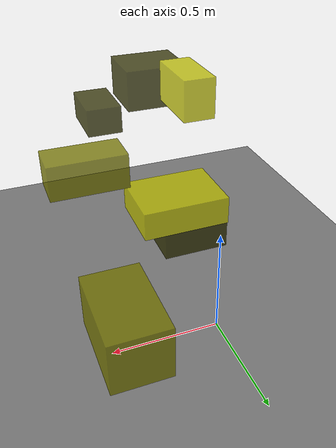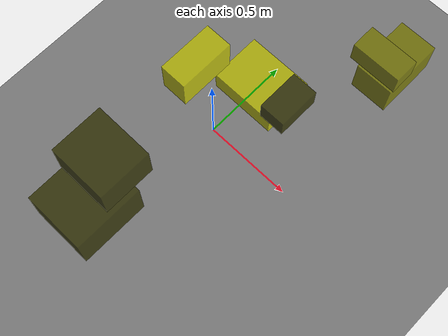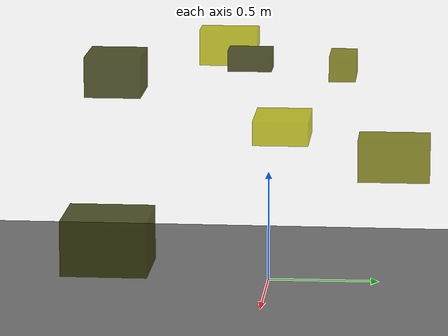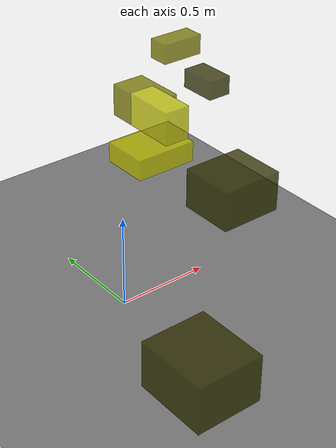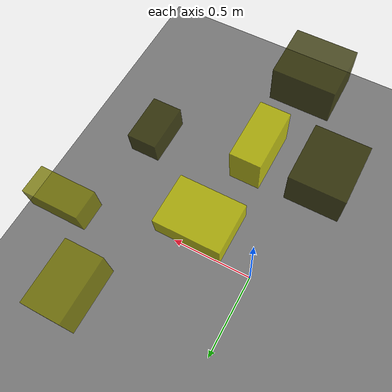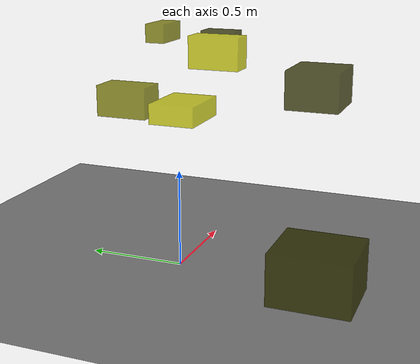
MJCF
<?xml version="1.0"?>
<mujoco model="obstacle_scene">
  <compiler angle="radian" coordinate="local"/>
  <option timestep="0.001" gravity="0 0 -9.81"/>

  <asset>
    <material name="obstacle_mat" rgba="0.8 0.8 0.0 0.8"/>
    <material name="ground_mat" rgba="0.5 0.5 0.5 1"/>
  </asset>

  <worldbody>
    <!-- Ground plane -->
    <geom name="ground" type="plane" size="3 3 0.1" material="ground_mat"/>

    <!-- Obstacles -->
    <body name="obstacle_0" pos="0.467985 -0.044911 1.106240">
      <geom name="obs_0" type="box" size="0.057875 0.093861 0.045726" rgba="0.2 0.2 0.0 0.8"/>
    </body>
    <body name="obstacle_1" pos="0.579083 0.578829 0.708471">
      <geom name="obs_1" type="box" size="0.094469 0.152591 0.090724" rgba="0.5 0.5 0.0 0.8"/>
    </body>
    <body name="obstacle_2" pos="0.089354 -0.168323 1.094812">
      <geom name="obs_2" type="box" size="0.061880 0.127344 0.079430" rgba="0.8 0.8 0.0 0.8"/>
    </body>
    <body name="obstacle_3" pos="-0.132438 -0.753000 0.132939">
      <geom name="obs_3" type="box" size="0.178221 0.199681 0.129155" rgba="0.2 0.2 0.0 0.8"/>
    </body>
    <body name="obstacle_4" pos="0.608954 0.359598 1.111260">
      <geom name="obs_4" type="box" size="0.112569 0.055615 0.051614" rgba="0.5 0.5 0.0 0.8"/>
    </body>
    <body name="obstacle_5" pos="0.232214 0.077303 0.760352">
      <geom name="obs_5" type="box" size="0.159950 0.122254 0.052873" rgba="0.8 0.8 0.0 0.8"/>
    </body>
    <body name="obstacle_6" pos="0.071140 -0.680210 0.962910">
      <geom name="obs_6" type="box" size="0.140898 0.125563 0.090696" rgba="0.2 0.2 0.0 0.8"/>
    </body>
  </worldbody>
</mujoco>
